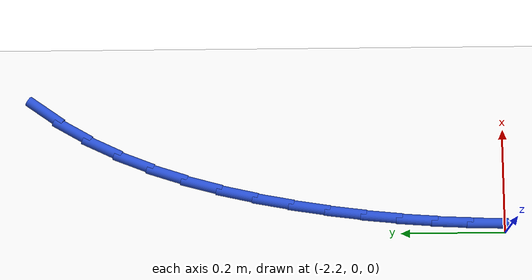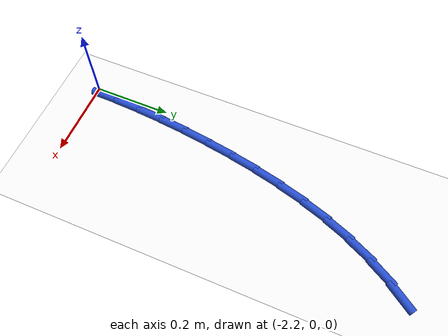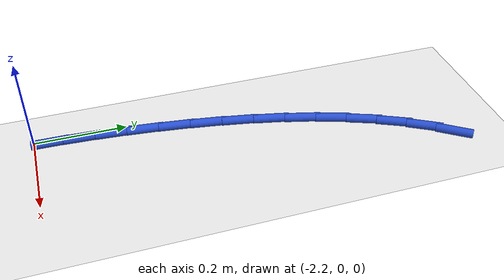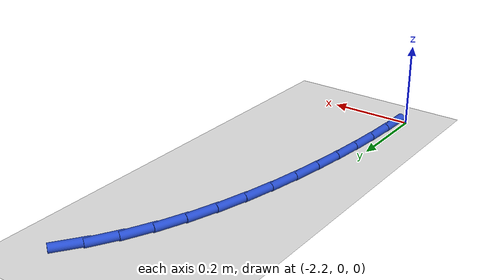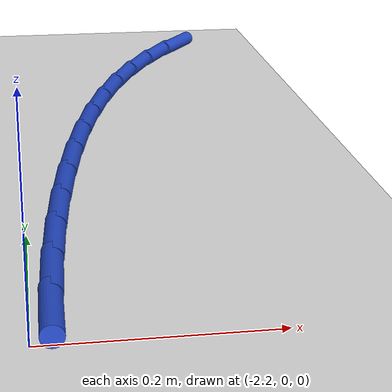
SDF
<sdf version="1.6">
 <world name="default">
  <model name="ground_plane">
   <static>1</static>
   <link name="link">
    <collision name="collision">
     <geometry><plane><normal>0 0 1</normal><size>100 100</size></plane></geometry>
     <surface><friction><ode><mu>100</mu><mu2>50</mu2></ode></friction></surface>
    </collision>
    <visual name="visual">
     <cast_shadows>0</cast_shadows>
     <geometry><plane><normal>0 0 1</normal><size>100 100</size></plane></geometry>
     <material>
      <script><uri>file://media/materials/scripts/gazebo.material</uri><name>Gazebo/WhiteGlow</name></script>
     </material>
    </visual>
   </link>
  </model>
  <model name="line">
   <link name="link_40">
    <pose>-1.958212753965474 0.8811435611938238 0.01 0 1.57 0.9582656039007017</pose>
    <collision name="collision">
     <geometry><cylinder><radius>0.01</radius><length>0.08</length></cylinder></geometry>
    </collision>
    <visual name="visual">
     <material>
      <script><name>Gazebo/Blue</name><uri>file://media/materials/scripts/gazebo.material</uri></script>
     </material>
     <geometry><cylinder><radius>0.01</radius><length>0.08</length></cylinder></geometry>
    </visual>
   </link>
   <link name="link_41">
    <pose>-1.9954449293244743 0.8281585419361511 0.01 0 1.57 1.0507464027281468</pose>
    <collision name="collision">
     <geometry><cylinder><radius>0.01</radius><length>0.08</length></cylinder></geometry>
    </collision>
    <visual name="visual">
     <material>
      <script><name>Gazebo/Blue</name><uri>file://media/materials/scripts/gazebo.material</uri></script>
     </material>
     <geometry><cylinder><radius>0.01</radius><length>0.08</length></cylinder></geometry>
    </visual>
   </link>
   <link name="link_42">
    <pose>-2.0281914619255246 0.7709721563842228 0.01 0 1.57 1.1310165967429906</pose>
    <collision name="collision">
     <geometry><cylinder><radius>0.01</radius><length>0.08</length></cylinder></geometry>
    </collision>
    <visual name="visual">
     <material>
      <script><name>Gazebo/Blue</name><uri>file://media/materials/scripts/gazebo.material</uri></script>
     </material>
     <geometry><cylinder><radius>0.01</radius><length>0.08</length></cylinder></geometry>
    </visual>
   </link>
   <link name="link_43">
    <pose>-2.0567801067482128 0.7102113739215468 0.01 0 1.57 1.2001355230368016</pose>
    <collision name="collision">
     <geometry><cylinder><radius>0.01</radius><length>0.08</length></cylinder></geometry>
    </collision>
    <visual name="visual">
     <material>
      <script><name>Gazebo/Blue</name><uri>file://media/materials/scripts/gazebo.material</uri></script>
     </material>
     <geometry><cylinder><radius>0.01</radius><length>0.08</length></cylinder></geometry>
    </visual>
   </link>
   <link name="link_44">
    <pose>-2.0815386187721265 0.6465031639316317 0.01 0 1.57 1.2593501559275466</pose>
    <collision name="collision">
     <geometry><cylinder><radius>0.01</radius><length>0.08</length></cylinder></geometry>
    </collision>
    <visual name="visual">
     <material>
      <script><name>Gazebo/Blue</name><uri>file://media/materials/scripts/gazebo.material</uri></script>
     </material>
     <geometry><cylinder><radius>0.01</radius><length>0.08</length></cylinder></geometry>
    </visual>
   </link>
   <link name="link_45">
    <pose>-2.102794752976853 0.5804744957979856 0.01 0 1.57 1.3098869550239844</pose>
    <collision name="collision">
     <geometry><cylinder><radius>0.01</radius><length>0.08</length></cylinder></geometry>
    </collision>
    <visual name="visual">
     <material>
      <script><name>Gazebo/Blue</name><uri>file://media/materials/scripts/gazebo.material</uri></script>
     </material>
     <geometry><cylinder><radius>0.01</radius><length>0.08</length></cylinder></geometry>
    </visual>
   </link>
   <link name="link_46">
    <pose>-2.12087626434198 0.5127523389041172 0.01 0 1.57 1.3528441055202085</pose>
    <collision name="collision">
     <geometry><cylinder><radius>0.01</radius><length>0.08</length></cylinder></geometry>
    </collision>
    <visual name="visual">
     <material>
      <script><name>Gazebo/Blue</name><uri>file://media/materials/scripts/gazebo.material</uri></script>
     </material>
     <geometry><cylinder><radius>0.01</radius><length>0.08</length></cylinder></geometry>
    </visual>
   </link>
   <link name="link_47">
    <pose>-2.136110907847094 0.4439636626335341 0.01 0 1.57 1.3891455107713127</pose>
    <collision name="collision">
     <geometry><cylinder><radius>0.01</radius><length>0.08</length></cylinder></geometry>
    </collision>
    <visual name="visual">
     <material>
      <script><name>Gazebo/Blue</name><uri>file://media/materials/scripts/gazebo.material</uri></script>
     </material>
     <geometry><cylinder><radius>0.01</radius><length>0.08</length></cylinder></geometry>
    </visual>
   </link>
   <link name="link_48">
    <pose>-2.148826438471783 0.3747354363697448 0.01 0 1.57 1.419555170420016</pose>
    <collision name="collision">
     <geometry><cylinder><radius>0.01</radius><length>0.08</length></cylinder></geometry>
    </collision>
    <visual name="visual">
     <material>
      <script><name>Gazebo/Blue</name><uri>file://media/materials/scripts/gazebo.material</uri></script>
     </material>
     <geometry><cylinder><radius>0.01</radius><length>0.08</length></cylinder></geometry>
    </visual>
   </link>
   <link name="link_49">
    <pose>-2.1593491261194813 0.3056911782267113 0.01 0 1.57 1.446578632375382</pose>
    <collision name="collision">
     <geometry><cylinder><radius>0.01</radius><length>0.08</length></cylinder></geometry>
    </collision>
    <visual name="visual">
     <material>
      <script><name>Gazebo/Blue</name><uri>file://media/materials/scripts/gazebo.material</uri></script>
     </material>
     <geometry><cylinder><radius>0.01</radius><length>0.08</length></cylinder></geometry>
    </visual>
   </link>
   <link name="link_50">
    <pose>-2.1678998026320158 0.2372093716309046 0.01 0 1.57 1.473583908153452</pose>
    <collision name="collision">
     <geometry><cylinder><radius>0.01</radius><length>0.08</length></cylinder></geometry>
    </collision>
    <visual name="visual">
     <material>
      <script><name>Gazebo/Blue</name><uri>file://media/materials/scripts/gazebo.material</uri></script>
     </material>
     <geometry><cylinder><radius>0.01</radius><length>0.08</length></cylinder></geometry>
    </visual>
   </link>
   <link name="link_51">
    <pose>-2.174525715413695 0.16926509532028297 0.01 0 1.57 1.5007722539966575</pose>
    <collision name="collision">
     <geometry><cylinder><radius>0.01</radius><length>0.08</length></cylinder></geometry>
    </collision>
    <visual name="visual">
     <material>
      <script><name>Gazebo/Blue</name><uri>file://media/materials/scripts/gazebo.material</uri></script>
     </material>
     <geometry><cylinder><radius>0.01</radius><length>0.08</length></cylinder></geometry>
    </visual>
   </link>
   <link name="link_52">
    <pose>-2.179257926433307 0.1017958135976189 0.01 0 1.57 1.5280292914439435</pose>
    <collision name="collision">
     <geometry><cylinder><radius>0.01</radius><length>0.08</length></cylinder></geometry>
    </collision>
    <visual name="visual">
     <material>
      <script><name>Gazebo/Blue</name><uri>file://media/materials/scripts/gazebo.material</uri></script>
     </material>
     <geometry><cylinder><radius>0.01</radius><length>0.08</length></cylinder></geometry>
    </visual>
   </link>
   <link name="link_53">
    <pose>-2.1821274976596423 0.0347389907656852 0.01 0 1.57 1.5552370721544784</pose>
    <collision name="collision">
     <geometry><cylinder><radius>0.01</radius><length>0.08</length></cylinder></geometry>
    </collision>
    <visual name="visual">
     <material>
      <script><name>Gazebo/Blue</name><uri>file://media/materials/scripts/gazebo.material</uri></script>
     </material>
     <geometry><cylinder><radius>0.01</radius><length>0.08</length></cylinder></geometry>
    </visual>
   </link>
  </model>
 </world>
</sdf>
